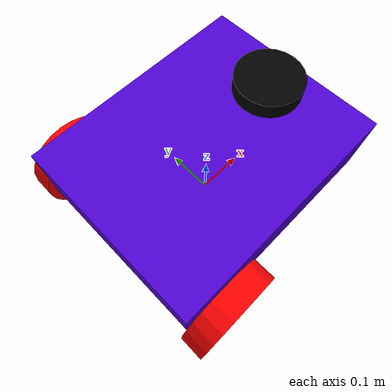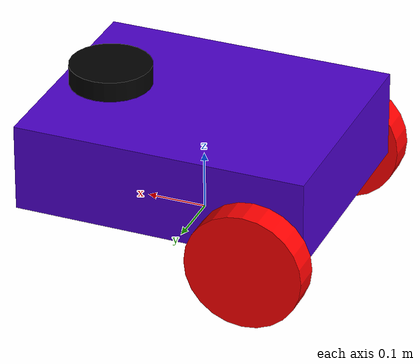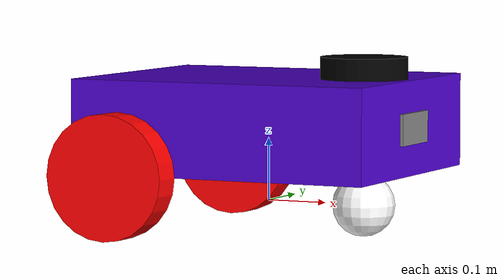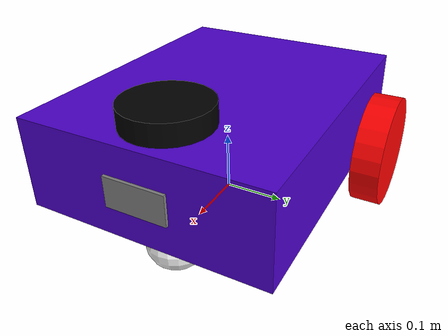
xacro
<?xml version="1.0"?>
<robot xmlns:xacro="http://www.ros.org/wiki/xacro"  name="mobile_robot">

    <xacro:property name="x" value="0.5" />
    <xacro:property name="y" value="0.4" />
    <xacro:property name="z" value="0.15" />

    <xacro:include filename="common_properties.xacro" />
    <xacro:include filename="mobile.gazebo.xacro" />

    <link name="base_footprint"/>

    <link name="base_link">
        <visual>
            <origin xyz="0 0 ${z/2}" rpy="0 0 0" />
            <geometry>
                <box size="${x} ${y} ${z}" />
            </geometry>
            <material name="blue">
                <color rgba="0.3 0 0.8 1" />
            </material>
        </visual>
        <collision>
            <origin xyz="0 0 ${z/2}" rpy="0 0 0" />
            <geometry>
                <box size="${x} ${y} ${z}" />
            </geometry>
        </collision>
        <xacro:box_inertial m="5.0" x="${x}" y="${y}" z="${z}" o_xyz="0 0 ${z/2}" o_rpy="0 0 0" />
    </link>

    <joint name="base_footprint_joint" type="fixed">
        <parent link="base_footprint" />
        <child link="base_link" />
        <origin xyz="0 0 0.05" rpy="0 0 0" />
    </joint>

    <xacro:macro name="wheel" params="prefix radius width mass">
        <link name="${prefix}_wheel_link">
            <visual>
                <origin xyz="0 0 0" rpy="1.57 0 0" />
                <geometry>
                    <cylinder radius="${radius}" length="${width}" />
                </geometry>
                <material name="red">
                    <color rgba="1 0 0 1" />
                </material>
            </visual>
            <collision>
                <origin xyz="0 0 0" rpy="1.57 0 0" />
                <geometry>
                    <cylinder radius="${radius}" length="${width}" />
                </geometry>
            </collision>
            <xacro:cylinder_inertial m="${mass}" r="${radius}" h="${width}" o_xyz="0 0 0" o_rpy="1.57 0 0" />
        </link>
    </xacro:macro>

    <xacro:wheel prefix="left" radius="0.1" width="0.05" mass="0.5" />
    <joint name="left_wheel_base_joint" type="continuous">
        <parent link="base_link" />
        <child link="left_wheel_link" />
        <origin xyz="${-x/3} ${(y/2 + 0.05/2)} 0" rpy="0 0 0" />
        <axis xyz="0 1 0" />
        <limit lower="-1.0" upper="1.0" effort="100" velocity="100" />
    </joint>
    <xacro:wheel prefix="right" radius="0.1" width="0.05" mass="0.5" />
    <joint name="right_wheel_base_joint" type="continuous">
        <parent link="base_link" />
        <child link="right_wheel_link" />
        <origin xyz="${- x/3} ${-(y/2 + 0.05/2)} 0" rpy="0 0 0" />
        <axis xyz="0 1 0" />
        <limit lower="-1.0" upper="1.0" effort="100" velocity="100" />
    </joint>

    <link name="caster_sphere">
        <visual>
            <origin xyz="0 0 0" rpy="0 0 0" />
            <geometry>
                <sphere radius="0.05" />
            </geometry>
            <material name="white">
                <color rgba="1 1 1 1" />
            </material>
        </visual>
        <collision>
            <origin xyz="0 0 0" rpy="0 0 0" />
            <geometry>
                <sphere radius="0.05" />
            </geometry>
        </collision>
        <xacro:sphere_inertial m="0.1" r="0.05" o_xyz="0 0 0" />
    </link>

    <joint name="caster_sphere_base_joint" type="fixed">
        <parent link="base_link" />
        <child link="caster_sphere" />
        <origin xyz="${x/3} 0 -0.05" rpy="0 0 0" />

    </joint>

    <xacro:include filename="camera.xacro"/>
    <xacro:include filename="lidar.xacro"/>

    <joint name="camera_joint" type="fixed">
        <parent link="base_link" />
        <child link="camera_link" />
        <origin xyz="${x/2} 0 ${z/2}" rpy="0 0 0" />
    </joint>

    <joint name="lidar_base_joint" type="fixed">
        <parent link="base_link" />
        <child link="lidar_link" />
        <origin xyz="${x/3} 0 ${z}" rpy="0 0 0" />
    </joint>

</robot>

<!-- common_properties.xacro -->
<robot xmlns:xacro="http://www.ros.org/wiki/xacro" >

    <xacro:macro name="box_inertial" params="m x y z o_xyz o_rpy">
        <inertial>
            <mass value="${m}" />
            <origin xyz="${o_xyz}" rpy="${o_rpy}" />
            <inertia ixx="${(m/12) * (y**2 + z**2)}" ixy="0.0" ixz="0.0"
                     iyy="${(m/12) * (x**2 + z**2)}" iyz="0.0"
                     izz="${(m/12) * (x**2 + y**2)}" />
        </inertial>
    </xacro:macro>

    <xacro:macro name="sphere_inertial" params="m r o_xyz">
        <inertial>
            <mass value="${m}" />
            <origin xyz="${o_xyz}" />
            <inertia ixx="${(2/5) * m * r**2}" ixy="0.0" ixz="0.0"
                     iyy="${(2/5) * m * r**2}" iyz="0.0"
                     izz="${(2/5) * m * r**2}" />
        </inertial>
    </xacro:macro>

    <xacro:macro name="cylinder_inertial" params="m r h o_xyz o_rpy">
        <inertial>
            <mass value="${m}" />
            <origin xyz="${o_xyz}" rpy="${o_rpy}" />
            <inertia ixx="${(1/12) * m * (3*r**2 + h**2)}" ixy="0.0" ixz="0.0"
                     iyy="${(1/12) * m * (3*r**2 + h**2)}" iyz="0.0"
                     izz="${(1/2) * m * r**2}" />
        </inertial>
    </xacro:macro>

</robot>

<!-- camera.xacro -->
<robot xmlns:xacro="http://www.ros.org/wiki/xacro">

    <xacro:property name="camera_length" value="0.01" />
    <xacro:property name="camera_width" value="0.1" />
    <xacro:property name="camera_height" value="0.05" />

    <material name="grey">
        <color rgba="0.5 0.5 0.5 1" />
    </material>

    <xacro:macro name="box_inertia" params="m x y z o_xyz o_rpy">
        <inertial>
            <mass value="${m}" />
            <origin xyz="${o_xyz}" rpy="${o_rpy}" />
            <inertia ixx="${(m/12) * (y*y + z*z)}" ixy="0" ixz="0"
                     iyy="${(m/12) * (x*x + z*z)}" iyz="0"
                     izz="${(m/12) * (x*x + y*y)}" />
        </inertial>
    </xacro:macro>

    <link name="camera_link">
        <visual>
            <geometry>
                <box size="${camera_length} ${camera_width} ${camera_height}" />
            </geometry>
            <material name="grey" />
        </visual>
        <collision>
            <geometry>
                <box size="${camera_length} ${camera_width} ${camera_height}" />
            </geometry>
        </collision>
        <xacro:box_inertia m="0.1" x="${camera_length}" y="${camera_width}" z="${camera_height}"
                           o_xyz="0 0 0" o_rpy="0 0 0" />
    </link>

    <link name="camera_link_optical" />

    <joint name="camera_optical_joint" type="fixed">
        <origin xyz="0 0 0" rpy="${-pi/2} 0 ${-pi/2}"/>
        <parent link="camera_link"/>
        <child link="camera_link_optical"/>
    </joint>

    <gazebo reference="camera_link">
        <sensor name="camera" type="camera">
            <camera>
                <horizontal_fov>1.3962634</horizontal_fov>
                <image>
                    <width>640</width>
                    <height>480</height>
                    <format>R8G8B8</format>
                </image>
                <clip>
                    <near>0.1</near>
                    <far>15</far>
                </clip>
                <noise>
                    <type>gaussian</type>
                    <mean>0.0</mean>
                    <stddev>0.007</stddev>
                </noise>
                <optical_frame_id>camera_link_optical</optical_frame_id>
                <camera_info_topic>camera/camera_info</camera_info_topic>
            </camera>
            <always_on>1</always_on>
            <update_rate>60</update_rate>
            <visualize>true</visualize>
            <topic>camera/image_raw</topic>
        </sensor>
    </gazebo>

</robot>

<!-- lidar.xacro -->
<robot xmlns:xacro="http://www.ros.org/wiki/xacro" >

    <xacro:property name="lidar_radius" value="0.07" />
    <xacro:property name="lidar_width" value="0.07" />
    <xacro:property name="lidar_mass" value="0.1" />

    <link name="lidar_link">
        <visual>
            <origin xyz="0 0 0" rpy="0 0 0" />
            <geometry>
               <cylinder radius="${lidar_radius}" length="${lidar_width}" />
            </geometry>
            <material name="black">
                <color rgba="0 0 0 1" />
            </material>
        </visual>
        <collision>
            <origin xyz="0 0 0" rpy="0 0 0" />
            <geometry>
               <cylinder radius="${lidar_radius}" length="${lidar_width}" />
            </geometry>
        </collision>

        <xacro:cylinder_inertial m="${lidar_mass}" r="${lidar_radius}" h="${lidar_width}" o_xyz="0 0 0" o_rpy="0 0 0" />
    </link>

     <gazebo reference="lidar_link">
    <sensor name="gpu_lidar" type="gpu_lidar">
      <update_rate>10</update_rate>
      <topic>scan</topic>
      <gz_frame_id>lidar_link</gz_frame_id>
      <lidar>
        <scan>
          <horizontal>
            <samples>720</samples>
            <!--(max_angle-min_angle)/samples * resolution -->
            <resolution>1</resolution>
            <min_angle>-3.14156</min_angle>
            <max_angle>3.14156</max_angle>
          </horizontal>
          <!-- Dirty hack for fake lidar detections with ogre 1 rendering in VM -->
        </scan>
        <range>
          <min>0.05</min>
          <max>10.0</max>
          <resolution>0.01</resolution>
        </range>
        <noise>
            <type>gaussian</type>
            <mean>0.0</mean>
            <stddev>0.01</stddev>
        </noise>
        <frame_id>lidar_link</frame_id>
      </lidar>
      <always_on>1</always_on>
      <visualize>true</visualize>
    </sensor>
  </gazebo>

</robot>
